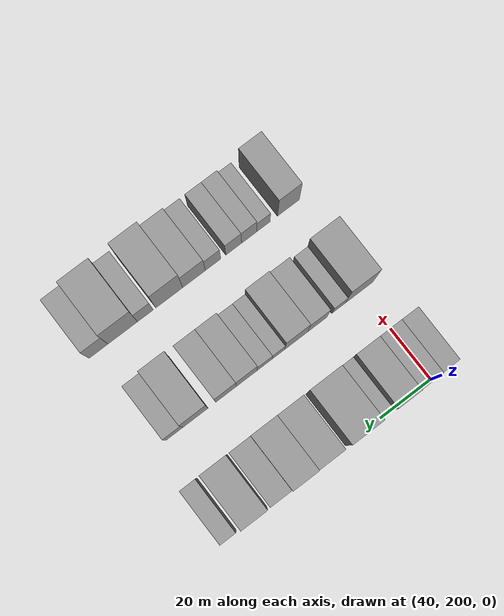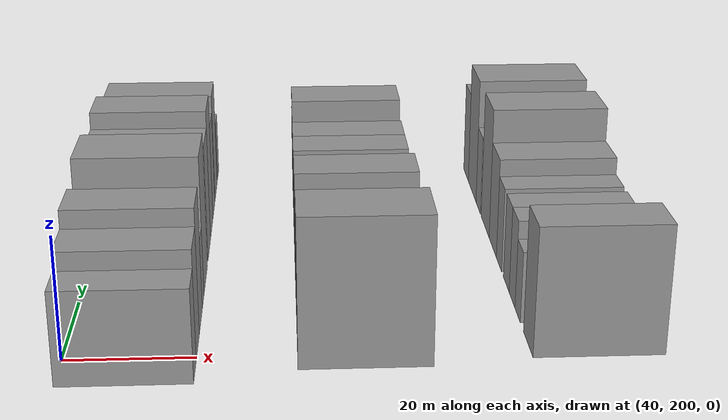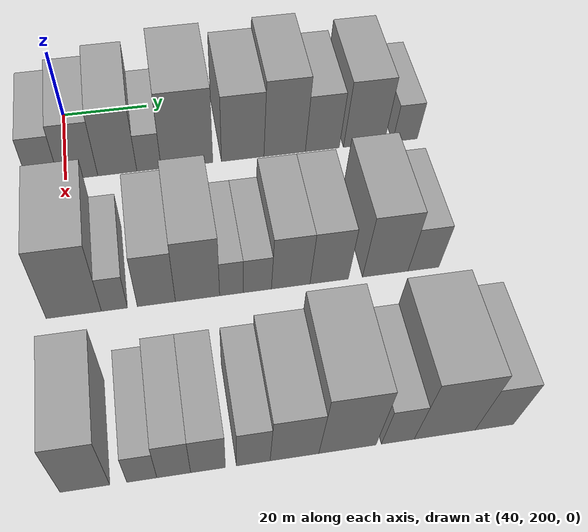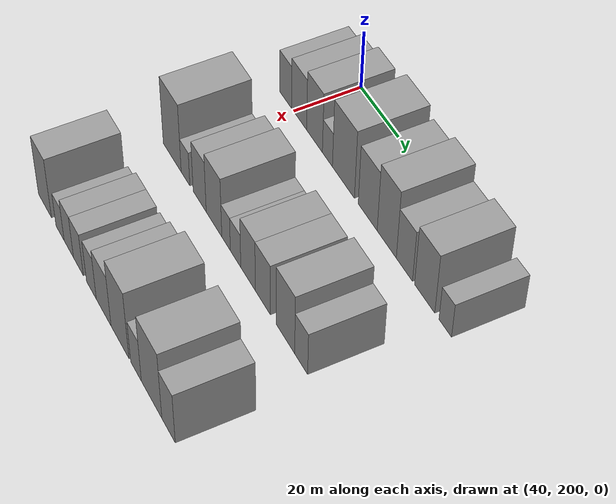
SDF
<sdf version="1.6">
 <world name="default">
  <model name="building_62">
   <static>1</static>
   <pose>50.0000 195.2270 0 0.000000 0.000000 0.000000</pose>
   <link name="link">
    <pose>0 0 7.50 0 0 0</pose>
    <collision name="collision"><geometry><box><size>20.0000 6.8969 15.0000</size></box></geometry></collision>
    <visual name="visual">
     <cast_shadows>0</cast_shadows>
     <geometry><box><size>20.0000 6.8969 15.0000</size></box></geometry>
     <material>
      <script>
       <uri>model://grey_wall/materials/scripts</uri>
       <uri>model://grey_wall/materials/textures</uri>
       <name>vrc/grey_wall</name>
      </script>
     </material>
    </visual>
   </link>
  </model>
  <model name="building_63">
   <static>1</static>
   <pose>50.0000 203.0137 0 0.000000 0.000000 0.000000</pose>
   <link name="link">
    <pose>0 0 9.00 0 0 0</pose>
    <collision name="collision"><geometry><box><size>20.0000 8.6763 18.0000</size></box></geometry></collision>
    <visual name="visual">
     <cast_shadows>0</cast_shadows>
     <geometry><box><size>20.0000 8.6763 18.0000</size></box></geometry>
     <material>
      <script>
       <uri>model://grey_wall/materials/scripts</uri>
       <uri>model://grey_wall/materials/textures</uri>
       <name>vrc/grey_wall</name>
      </script>
     </material>
    </visual>
   </link>
  </model>
  <model name="building_64">
   <static>1</static>
   <pose>50.0000 211.7805 0 0.000000 0.000000 0.000000</pose>
   <link name="link">
    <pose>0 0 10.50 0 0 0</pose>
    <collision name="collision"><geometry><box><size>20.0000 8.8573 21.0000</size></box></geometry></collision>
    <visual name="visual">
     <cast_shadows>0</cast_shadows>
     <geometry><box><size>20.0000 8.8573 21.0000</size></box></geometry>
     <material>
      <script>
       <uri>model://grey_wall/materials/scripts</uri>
       <uri>model://grey_wall/materials/textures</uri>
       <name>vrc/grey_wall</name>
      </script>
     </material>
    </visual>
   </link>
  </model>
  <model name="building_65">
   <static>1</static>
   <pose>50.0000 218.9763 0 0.000000 0.000000 0.000000</pose>
   <link name="link">
    <pose>0 0 6.00 0 0 0</pose>
    <collision name="collision"><geometry><box><size>20.0000 5.5345 12.0000</size></box></geometry></collision>
    <visual name="visual">
     <cast_shadows>0</cast_shadows>
     <geometry><box><size>20.0000 5.5345 12.0000</size></box></geometry>
     <material>
      <script>
       <uri>model://grey_wall/materials/scripts</uri>
       <uri>model://grey_wall/materials/textures</uri>
       <name>vrc/grey_wall</name>
      </script>
     </material>
    </visual>
   </link>
  </model>
  <model name="building_66">
   <static>1</static>
   <pose>50.0000 227.6906 0 0.000000 0.000000 0.000000</pose>
   <link name="link">
    <pose>0 0 12.00 0 0 0</pose>
    <collision name="collision"><geometry><box><size>20.0000 11.8941 24.0000</size></box></geometry></collision>
    <visual name="visual">
     <cast_shadows>0</cast_shadows>
     <geometry><box><size>20.0000 11.8941 24.0000</size></box></geometry>
     <material>
      <script>
       <uri>model://grey_wall/materials/scripts</uri>
       <uri>model://grey_wall/materials/textures</uri>
       <name>vrc/grey_wall</name>
      </script>
     </material>
    </visual>
   </link>
  </model>
  <model name="building_67">
   <static>1</static>
   <pose>50.0000 240.5784 0 0.000000 0.000000 0.000000</pose>
   <link name="link">
    <pose>0 0 10.50 0 0 0</pose>
    <collision name="collision"><geometry><box><size>20.0000 9.8814 21.0000</size></box></geometry></collision>
    <visual name="visual">
     <cast_shadows>0</cast_shadows>
     <geometry><box><size>20.0000 9.8814 21.0000</size></box></geometry>
     <material>
      <script>
       <uri>model://grey_wall/materials/scripts</uri>
       <uri>model://grey_wall/materials/textures</uri>
       <name>vrc/grey_wall</name>
      </script>
     </material>
    </visual>
   </link>
  </model>
  <model name="building_68">
   <static>1</static>
   <pose>50.0000 250.3855 0 0.000000 0.000000 0.000000</pose>
   <link name="link">
    <pose>0 0 12.00 0 0 0</pose>
    <collision name="collision"><geometry><box><size>20.0000 9.7328 24.0000</size></box></geometry></collision>
    <visual name="visual">
     <cast_shadows>0</cast_shadows>
     <geometry><box><size>20.0000 9.7328 24.0000</size></box></geometry>
     <material>
      <script>
       <uri>model://grey_wall/materials/scripts</uri>
       <uri>model://grey_wall/materials/textures</uri>
       <name>vrc/grey_wall</name>
      </script>
     </material>
    </visual>
   </link>
  </model>
  <model name="building_69">
   <static>1</static>
   <pose>50.0000 259.2750 0 0.000000 0.000000 0.000000</pose>
   <link name="link">
    <pose>0 0 9.00 0 0 0</pose>
    <collision name="collision"><geometry><box><size>20.0000 8.0463 18.0000</size></box></geometry></collision>
    <visual name="visual">
     <cast_shadows>0</cast_shadows>
     <geometry><box><size>20.0000 8.0463 18.0000</size></box></geometry>
     <material>
      <script>
       <uri>model://grey_wall/materials/scripts</uri>
       <uri>model://grey_wall/materials/textures</uri>
       <name>vrc/grey_wall</name>
      </script>
     </material>
    </visual>
   </link>
  </model>
  <model name="building_70">
   <static>1</static>
   <pose>50.0000 269.1923 0 0.000000 0.000000 0.000000</pose>
   <link name="link">
    <pose>0 0 10.50 0 0 0</pose>
    <collision name="collision"><geometry><box><size>20.0000 9.7882 21.0000</size></box></geometry></collision>
    <visual name="visual">
     <cast_shadows>0</cast_shadows>
     <geometry><box><size>20.0000 9.7882 21.0000</size></box></geometry>
     <material>
      <script>
       <uri>model://grey_wall/materials/scripts</uri>
       <uri>model://grey_wall/materials/textures</uri>
       <name>vrc/grey_wall</name>
      </script>
     </material>
    </visual>
   </link>
  </model>
  <model name="building_71">
   <static>1</static>
   <pose>50.0000 279.0514 0 0.000000 0.000000 0.000000</pose>
   <link name="link">
    <pose>0 0 6.00 0 0 0</pose>
    <collision name="collision"><geometry><box><size>20.0000 5.9301 12.0000</size></box></geometry></collision>
    <visual name="visual">
     <cast_shadows>0</cast_shadows>
     <geometry><box><size>20.0000 5.9301 12.0000</size></box></geometry>
     <material>
      <script>
       <uri>model://grey_wall/materials/scripts</uri>
       <uri>model://grey_wall/materials/textures</uri>
       <name>vrc/grey_wall</name>
      </script>
     </material>
    </visual>
   </link>
  </model>
  <model name="building_142">
   <static>1</static>
   <pose>85.0000 200.9007 0 0.000000 0.000000 0.000000</pose>
   <link name="link">
    <pose>0 0 12.00 0 0 0</pose>
    <collision name="collision"><geometry><box><size>20.0000 11.0409 24.0000</size></box></geometry></collision>
    <visual name="visual">
     <cast_shadows>0</cast_shadows>
     <geometry><box><size>20.0000 11.0409 24.0000</size></box></geometry>
     <material>
      <script>
       <uri>model://grey_wall/materials/scripts</uri>
       <uri>model://grey_wall/materials/textures</uri>
       <name>vrc/grey_wall</name>
      </script>
     </material>
    </visual>
   </link>
  </model>
  <model name="building_143">
   <static>1</static>
   <pose>85.0000 209.0404 0 0.000000 0.000000 0.000000</pose>
   <link name="link">
    <pose>0 0 6.00 0 0 0</pose>
    <collision name="collision"><geometry><box><size>20.0000 5.2383 12.0000</size></box></geometry></collision>
    <visual name="visual">
     <cast_shadows>0</cast_shadows>
     <geometry><box><size>20.0000 5.2383 12.0000</size></box></geometry>
     <material>
      <script>
       <uri>model://grey_wall/materials/scripts</uri>
       <uri>model://grey_wall/materials/textures</uri>
       <name>vrc/grey_wall</name>
      </script>
     </material>
    </visual>
   </link>
  </model>
  <model name="building_144">
   <static>1</static>
   <pose>85.0000 217.5261 0 0.000000 0.000000 0.000000</pose>
   <link name="link">
    <pose>0 0 9.00 0 0 0</pose>
    <collision name="collision"><geometry><box><size>20.0000 7.7331 18.0000</size></box></geometry></collision>
    <visual name="visual">
     <cast_shadows>0</cast_shadows>
     <geometry><box><size>20.0000 7.7331 18.0000</size></box></geometry>
     <material>
      <script>
       <uri>model://grey_wall/materials/scripts</uri>
       <uri>model://grey_wall/materials/textures</uri>
       <name>vrc/grey_wall</name>
      </script>
     </material>
    </visual>
   </link>
  </model>
  <model name="building_145">
   <static>1</static>
   <pose>85.0000 225.9189 0 0.000000 0.000000 0.000000</pose>
   <link name="link">
    <pose>0 0 10.50 0 0 0</pose>
    <collision name="collision"><geometry><box><size>20.0000 9.0525 21.0000</size></box></geometry></collision>
    <visual name="visual">
     <cast_shadows>0</cast_shadows>
     <geometry><box><size>20.0000 9.0525 21.0000</size></box></geometry>
     <material>
      <script>
       <uri>model://grey_wall/materials/scripts</uri>
       <uri>model://grey_wall/materials/textures</uri>
       <name>vrc/grey_wall</name>
      </script>
     </material>
    </visual>
   </link>
  </model>
  <model name="building_146">
   <static>1</static>
   <pose>85.0000 232.8794 0 0.000000 0.000000 0.000000</pose>
   <link name="link">
    <pose>0 0 6.00 0 0 0</pose>
    <collision name="collision"><geometry><box><size>20.0000 4.8685 12.0000</size></box></geometry></collision>
    <visual name="visual">
     <cast_shadows>0</cast_shadows>
     <geometry><box><size>20.0000 4.8685 12.0000</size></box></geometry>
     <material>
      <script>
       <uri>model://grey_wall/materials/scripts</uri>
       <uri>model://grey_wall/materials/textures</uri>
       <name>vrc/grey_wall</name>
      </script>
     </material>
    </visual>
   </link>
  </model>
  <model name="building_147">
   <static>1</static>
   <pose>85.0000 238.2416 0 0.000000 0.000000 0.000000</pose>
   <link name="link">
    <pose>0 0 6.00 0 0 0</pose>
    <collision name="collision"><geometry><box><size>20.0000 5.8560 12.0000</size></box></geometry></collision>
    <visual name="visual">
     <cast_shadows>0</cast_shadows>
     <geometry><box><size>20.0000 5.8560 12.0000</size></box></geometry>
     <material>
      <script>
       <uri>model://grey_wall/materials/scripts</uri>
       <uri>model://grey_wall/materials/textures</uri>
       <name>vrc/grey_wall</name>
      </script>
     </material>
    </visual>
   </link>
  </model>
  <model name="building_148">
   <static>1</static>
   <pose>85.0000 245.2063 0 0.000000 0.000000 0.000000</pose>
   <link name="link">
    <pose>0 0 9.00 0 0 0</pose>
    <collision name="collision"><geometry><box><size>20.0000 8.0736 18.0000</size></box></geometry></collision>
    <visual name="visual">
     <cast_shadows>0</cast_shadows>
     <geometry><box><size>20.0000 8.0736 18.0000</size></box></geometry>
     <material>
      <script>
       <uri>model://grey_wall/materials/scripts</uri>
       <uri>model://grey_wall/materials/textures</uri>
       <name>vrc/grey_wall</name>
      </script>
     </material>
    </visual>
   </link>
  </model>
  <model name="building_149">
   <static>1</static>
   <pose>85.0000 253.2867 0 0.000000 0.000000 0.000000</pose>
   <link name="link">
    <pose>0 0 9.00 0 0 0</pose>
    <collision name="collision"><geometry><box><size>20.0000 8.0872 18.0000</size></box></geometry></collision>
    <visual name="visual">
     <cast_shadows>0</cast_shadows>
     <geometry><box><size>20.0000 8.0872 18.0000</size></box></geometry>
     <material>
      <script>
       <uri>model://grey_wall/materials/scripts</uri>
       <uri>model://grey_wall/materials/textures</uri>
       <name>vrc/grey_wall</name>
      </script>
     </material>
    </visual>
   </link>
  </model>
  <model name="building_150">
   <static>1</static>
   <pose>85.0000 265.1946 0 0.000000 0.000000 0.000000</pose>
   <link name="link">
    <pose>0 0 10.50 0 0 0</pose>
    <collision name="collision"><geometry><box><size>20.0000 9.7285 21.0000</size></box></geometry></collision>
    <visual name="visual">
     <cast_shadows>0</cast_shadows>
     <geometry><box><size>20.0000 9.7285 21.0000</size></box></geometry>
     <material>
      <script>
       <uri>model://grey_wall/materials/scripts</uri>
       <uri>model://grey_wall/materials/textures</uri>
       <name>vrc/grey_wall</name>
      </script>
     </material>
    </visual>
   </link>
  </model>
  <model name="building_151">
   <static>1</static>
   <pose>85.0000 273.3765 0 0.000000 0.000000 0.000000</pose>
   <link name="link">
    <pose>0 0 7.50 0 0 0</pose>
    <collision name="collision"><geometry><box><size>20.0000 6.6353 15.0000</size></box></geometry></collision>
    <visual name="visual">
     <cast_shadows>0</cast_shadows>
     <geometry><box><size>20.0000 6.6353 15.0000</size></box></geometry>
     <material>
      <script>
       <uri>model://grey_wall/materials/scripts</uri>
       <uri>model://grey_wall/materials/textures</uri>
       <name>vrc/grey_wall</name>
      </script>
     </material>
    </visual>
   </link>
  </model>
  <model name="building_221">
   <static>1</static>
   <pose>120.0000 201.7988 0 0.000000 0.000000 0.000000</pose>
   <link name="link">
    <pose>0 0 10.50 0 0 0</pose>
    <collision name="collision"><geometry><box><size>20.0000 8.7034 21.0000</size></box></geometry></collision>
    <visual name="visual">
     <cast_shadows>0</cast_shadows>
     <geometry><box><size>20.0000 8.7034 21.0000</size></box></geometry>
     <material>
      <script>
       <uri>model://grey_wall/materials/scripts</uri>
       <uri>model://grey_wall/materials/textures</uri>
       <name>vrc/grey_wall</name>
      </script>
     </material>
    </visual>
   </link>
  </model>
  <model name="building_222">
   <static>1</static>
   <pose>120.0000 211.8116 0 0.000000 0.000000 0.000000</pose>
   <link name="link">
    <pose>0 0 6.00 0 0 0</pose>
    <collision name="collision"><geometry><box><size>20.0000 5.3221 12.0000</size></box></geometry></collision>
    <visual name="visual">
     <cast_shadows>0</cast_shadows>
     <geometry><box><size>20.0000 5.3221 12.0000</size></box></geometry>
     <material>
      <script>
       <uri>model://grey_wall/materials/scripts</uri>
       <uri>model://grey_wall/materials/textures</uri>
       <name>vrc/grey_wall</name>
      </script>
     </material>
    </visual>
   </link>
  </model>
  <model name="building_223">
   <static>1</static>
   <pose>120.0000 217.4837 0 0.000000 0.000000 0.000000</pose>
   <link name="link">
    <pose>0 0 7.50 0 0 0</pose>
    <collision name="collision"><geometry><box><size>20.0000 6.0221 15.0000</size></box></geometry></collision>
    <visual name="visual">
     <cast_shadows>0</cast_shadows>
     <geometry><box><size>20.0000 6.0221 15.0000</size></box></geometry>
     <material>
      <script>
       <uri>model://grey_wall/materials/scripts</uri>
       <uri>model://grey_wall/materials/textures</uri>
       <name>vrc/grey_wall</name>
      </script>
     </material>
    </visual>
   </link>
  </model>
  <model name="building_224">
   <static>1</static>
   <pose>120.0000 223.6107 0 0.000000 0.000000 0.000000</pose>
   <link name="link">
    <pose>0 0 7.50 0 0 0</pose>
    <collision name="collision"><geometry><box><size>20.0000 6.2319 15.0000</size></box></geometry></collision>
    <visual name="visual">
     <cast_shadows>0</cast_shadows>
     <geometry><box><size>20.0000 6.2319 15.0000</size></box></geometry>
     <material>
      <script>
       <uri>model://grey_wall/materials/scripts</uri>
       <uri>model://grey_wall/materials/textures</uri>
       <name>vrc/grey_wall</name>
      </script>
     </material>
    </visual>
   </link>
  </model>
  <model name="building_225">
   <static>1</static>
   <pose>120.0000 231.7772 0 0.000000 0.000000 0.000000</pose>
   <link name="link">
    <pose>0 0 7.50 0 0 0</pose>
    <collision name="collision"><geometry><box><size>20.0000 6.1011 15.0000</size></box></geometry></collision>
    <visual name="visual">
     <cast_shadows>0</cast_shadows>
     <geometry><box><size>20.0000 6.1011 15.0000</size></box></geometry>
     <material>
      <script>
       <uri>model://grey_wall/materials/scripts</uri>
       <uri>model://grey_wall/materials/textures</uri>
       <name>vrc/grey_wall</name>
      </script>
     </material>
    </visual>
   </link>
  </model>
  <model name="building_226">
   <static>1</static>
   <pose>120.0000 239.2904 0 0.000000 0.000000 0.000000</pose>
   <link name="link">
    <pose>0 0 9.00 0 0 0</pose>
    <collision name="collision"><geometry><box><size>20.0000 8.9252 18.0000</size></box></geometry></collision>
    <visual name="visual">
     <cast_shadows>0</cast_shadows>
     <geometry><box><size>20.0000 8.9252 18.0000</size></box></geometry>
     <material>
      <script>
       <uri>model://grey_wall/materials/scripts</uri>
       <uri>model://grey_wall/materials/textures</uri>
       <name>vrc/grey_wall</name>
      </script>
     </material>
    </visual>
   </link>
  </model>
  <model name="building_227">
   <static>1</static>
   <pose>120.0000 249.0477 0 0.000000 0.000000 0.000000</pose>
   <link name="link">
    <pose>0 0 12.00 0 0 0</pose>
    <collision name="collision"><geometry><box><size>20.0000 10.5895 24.0000</size></box></geometry></collision>
    <visual name="visual">
     <cast_shadows>0</cast_shadows>
     <geometry><box><size>20.0000 10.5895 24.0000</size></box></geometry>
     <material>
      <script>
       <uri>model://grey_wall/materials/scripts</uri>
       <uri>model://grey_wall/materials/textures</uri>
       <name>vrc/grey_wall</name>
      </script>
     </material>
    </visual>
   </link>
  </model>
  <model name="building_228">
   <static>1</static>
   <pose>120.0000 258.4227 0 0.000000 0.000000 0.000000</pose>
   <link name="link">
    <pose>0 0 7.50 0 0 0</pose>
    <collision name="collision"><geometry><box><size>20.0000 6.1605 15.0000</size></box></geometry></collision>
    <visual name="visual">
     <cast_shadows>0</cast_shadows>
     <geometry><box><size>20.0000 6.1605 15.0000</size></box></geometry>
     <material>
      <script>
       <uri>model://grey_wall/materials/scripts</uri>
       <uri>model://grey_wall/materials/textures</uri>
       <name>vrc/grey_wall</name>
      </script>
     </material>
    </visual>
   </link>
  </model>
  <model name="building_229">
   <static>1</static>
   <pose>120.0000 267.2680 0 0.000000 0.000000 0.000000</pose>
   <link name="link">
    <pose>0 0 12.00 0 0 0</pose>
    <collision name="collision"><geometry><box><size>20.0000 11.5302 24.0000</size></box></geometry></collision>
    <visual name="visual">
     <cast_shadows>0</cast_shadows>
     <geometry><box><size>20.0000 11.5302 24.0000</size></box></geometry>
     <material>
      <script>
       <uri>model://grey_wall/materials/scripts</uri>
       <uri>model://grey_wall/materials/textures</uri>
       <name>vrc/grey_wall</name>
      </script>
     </material>
    </visual>
   </link>
  </model>
  <model name="building_230">
   <static>1</static>
   <pose>120.0000 276.7028 0 0.000000 0.000000 0.000000</pose>
   <link name="link">
    <pose>0 0 9.00 0 0 0</pose>
    <collision name="collision"><geometry><box><size>20.0000 7.3393 18.0000</size></box></geometry></collision>
    <visual name="visual">
     <cast_shadows>0</cast_shadows>
     <geometry><box><size>20.0000 7.3393 18.0000</size></box></geometry>
     <material>
      <script>
       <uri>model://grey_wall/materials/scripts</uri>
       <uri>model://grey_wall/materials/textures</uri>
       <name>vrc/grey_wall</name>
      </script>
     </material>
    </visual>
   </link>
  </model>
 </world>
</sdf>
